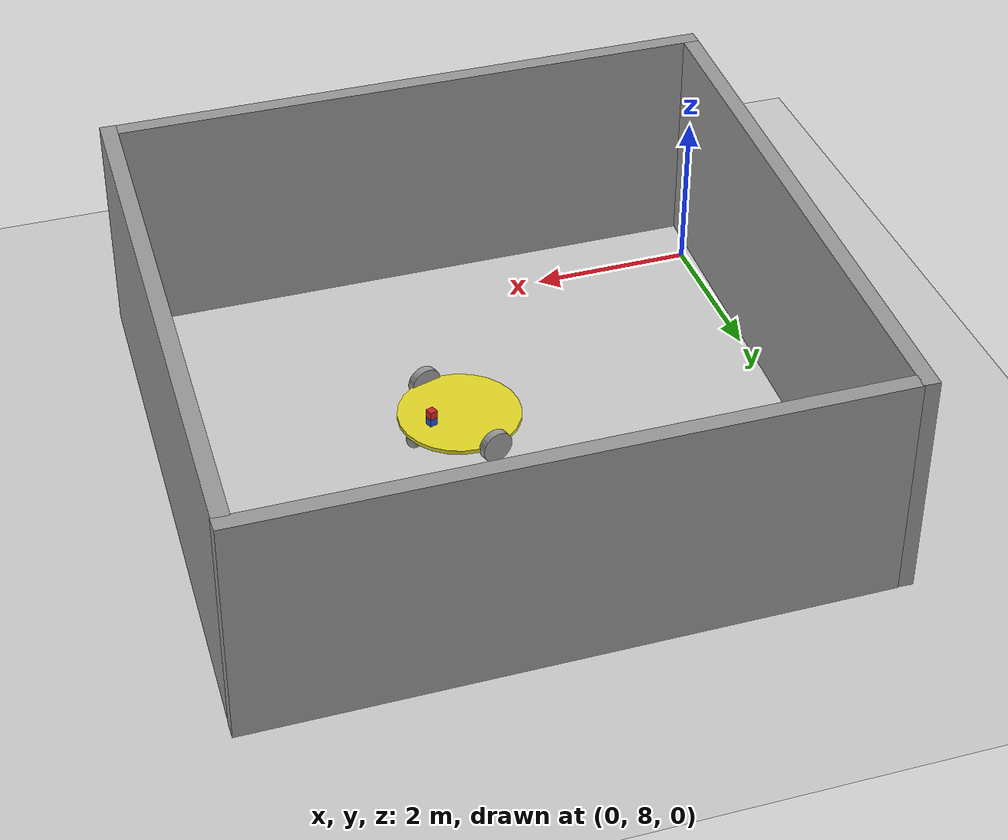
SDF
<sdf version="1.6">
 <world name="default">
  <light name="sun" type="directional">
   <pose>0 0 10 0 -0 0</pose>
   <diffuse>0.8 0.8 0.8 1</diffuse>
   <specular>0.2 0.2 0.2 1</specular>
   <attenuation>
    <range>1000</range>
    <constant>0.9</constant>
    <linear>0.01</linear>
    <quadratic>0.001</quadratic>
   </attenuation>
   <direction>-0.5 0.1 -0.9</direction>
  </light>
  <model name="ground_plane">
   <static>1</static>
   <link name="link">
    <collision name="collision">
     <geometry><plane><normal>0 0 1</normal><size>100 100</size></plane></geometry>
     <surface><friction><ode><mu>100</mu><mu2>50</mu2></ode></friction></surface>
    </collision>
    <visual name="visual">
     <cast_shadows>0</cast_shadows>
     <geometry><plane><normal>0 0 1</normal><size>100 100</size></plane></geometry>
     <material>
      <script><uri>file://media/materials/scripts/gazebo.material</uri><name>Gazebo/Grey</name></script>
     </material>
    </visual>
   </link>
  </model>
  <gravity>0 0 -9.8</gravity>
  <magnetic_field>6e-06 2.3e-05 -4.2e-05</magnetic_field>
  <atmosphere type="adiabatic"/>
  <physics name="default_physics" default="0" type="ode">
   <max_step_size>0.001</max_step_size>
   <real_time_factor>1</real_time_factor>
   <real_time_update_rate>1000</real_time_update_rate>
  </physics>
  <scene><ambient>0.4 0.4 0.4 1</ambient><background>0.7 0.7 0.7 1</background><shadows>1</shadows></scene>
  <spherical_coordinates>
   <surface_model>EARTH_WGS84</surface_model>
   <latitude_deg>0</latitude_deg>
   <longitude_deg>0</longitude_deg>
   <elevation>0</elevation>
   <heading_deg>0</heading_deg>
  </spherical_coordinates>
  <model name="grey_wall">
   <static>1</static>
   <link name="link">
    <pose>0 0 1.4 0 -0 0</pose>
    <collision name="collision"><geometry><box><size>7.5 0.2 2.8</size></box></geometry></collision>
    <visual name="visual">
     <cast_shadows>0</cast_shadows>
     <geometry><box><size>7.5 0.2 2.8</size></box></geometry>
     <material>
      <script>
       <uri>model://grey_wall/materials/scripts</uri>
       <uri>model://grey_wall/materials/textures</uri>
       <name>vrc/grey_wall</name>
      </script>
     </material>
    </visual>
   </link>
   <pose>3.39843 7.20345 0 0 -0 0</pose>
  </model>
  <model name="robot">
   <link name="base_footprint">
    <inertial>
     <pose>0 0 0.2 0 -0 0</pose>
     <mass>5</mass>
     <inertia><ixx>2.02829</ixx><ixy>0</ixy><ixz>0</ixz><iyy>2.87329</iyy><iyz>0</iyz><izz>2.90125</izz></inertia>
    </inertial>
    <collision name="base_footprint_fixed_joint_lump__base_link_collision">
     <pose>0 0 0.2 0 -0 0</pose>
     <geometry><cylinder><length>0.05</length><radius>0.75</radius></cylinder></geometry>
    </collision>
    <collision name="base_footprint_fixed_joint_lump__caster_wheel_back_collision_1">
     <pose>-0.65 0 0.1 0 -0 0</pose>
     <geometry><sphere><radius>0.1</radius></sphere></geometry>
     <surface><friction><ode><mu>0</mu><mu2>0</mu2></ode></friction></surface>
    </collision>
    <collision name="base_footprint_fixed_joint_lump__caster_wheel_front_collision_2">
     <pose>0.65 0 0.1 0 -0 0</pose>
     <geometry><sphere><radius>0.1</radius></sphere></geometry>
     <surface><friction><ode><mu>0</mu><mu2>0</mu2></ode></friction></surface>
    </collision>
    <visual name="base_footprint_visual">
     <geometry><box><size>0.001 0.001 0.001</size></box></geometry>
     <material><script><uri>__default__</uri><name>__default__</name></script></material>
    </visual>
    <visual name="base_footprint_fixed_joint_lump__base_link_visual_1">
     <pose>0 0 0.2 0 -0 0</pose>
     <geometry><cylinder><length>0.05</length><radius>0.75</radius></cylinder></geometry>
     <material>
      <script><name>Gazebo/Yellow</name><uri>file://media/materials/scripts/gazebo.material</uri></script>
     </material>
    </visual>
    <visual name="base_footprint_fixed_joint_lump__caster_wheel_back_visual_2">
     <pose>-0.65 0 0.1 0 -0 0</pose>
     <geometry><sphere><radius>0.1</radius></sphere></geometry>
     <material>
      <script><name>Gazebo/Grey</name><uri>file://media/materials/scripts/gazebo.material</uri></script>
     </material>
    </visual>
    <visual name="base_footprint_fixed_joint_lump__caster_wheel_front_visual_3">
     <pose>0.65 0 0.1 0 -0 0</pose>
     <geometry><sphere><radius>0.1</radius></sphere></geometry>
     <material>
      <script><name>Gazebo/Grey</name><uri>file://media/materials/scripts/gazebo.material</uri></script>
     </material>
    </visual>
    <visual name="base_footprint_fixed_joint_lump__camera_link_visual_4">
     <pose>0.4 0 0.375 0 -0 0</pose>
     <geometry><box><size>0.1 0.1 0.1</size></box></geometry>
     <material>
      <script><name>Gazebo/Red</name><uri>file://media/materials/scripts/gazebo.material</uri></script>
     </material>
    </visual>
    <visual name="base_footprint_fixed_joint_lump__hokuyo_link_visual_5">
     <pose>0.4 0 0.275 0 -0 0</pose>
     <geometry><box><size>0.1 0.1 0.1</size></box></geometry>
     <material>
      <script><name>Gazebo/Blue</name><uri>file://media/materials/scripts/gazebo.material</uri></script>
     </material>
    </visual>
    <sensor name="camera1" type="camera">
     <visualize>1</visualize>
     <update_rate>40</update_rate>
     <camera name="head">
      <horizontal_fov>1.39626</horizontal_fov>
      <image><width>800</width><height>800</height><format>R8G8B8</format></image>
      <clip><near>0.02</near><far>300</far></clip>
      <noise><type>gaussian</type><mean>0</mean><stddev>0.007</stddev></noise>
     </camera>
     <plugin name="camera_controller" filename="libgazebo_ros_camera.so">
      <topicName>/image</topicName>
      <frameName>camera_link</frameName>
      <robotNamespace>/</robotNamespace>
     </plugin>
     <pose>0.4 0 0.375 0 -0 0</pose>
    </sensor>
    <sensor name="head_hokuyo_sensor" type="ray">
     <visualize>1</visualize>
     <update_rate>40</update_rate>
     <ray>
      <scan>
       <horizontal>
        <samples>512</samples>
        <resolution>1</resolution>
        <min_angle>-1.5708</min_angle>
        <max_angle>1.5708</max_angle>
       </horizontal>
       <vertical><samples>1</samples><min_angle>0</min_angle><max_angle>0</max_angle></vertical>
      </scan>
      <range><min>0.1</min><max>10</max><resolution>0.001</resolution></range>
     </ray>
     <plugin name="gazebo_ros_head_hokuyo_controller" filename="libgazebo_ros_laser.so">
      <topicName>/scan</topicName>
      <frameName>hokuyo_link</frameName>
      <robotNamespace>/</robotNamespace>
     </plugin>
     <pose>0.4 0 0.275 0 -0 0</pose>
    </sensor>
   </link>
   <link name="left_wheel">
    <pose>0 -0.75 0.2 0 -0 0</pose>
    <inertial>
     <mass>1</mass>
     <inertia><ixx>1</ixx><ixy>0</ixy><ixz>0</ixz><iyy>1</iyy><iyz>0</iyz><izz>1</izz></inertia>
    </inertial>
    <collision name="left_wheel_collision">
     <pose>0 0 0 1.5708 -0 0</pose>
     <geometry><cylinder><length>0.1</length><radius>0.2</radius></cylinder></geometry>
     <surface>
      <contact><ode><kp>1e+07</kp><kd>1</kd></ode></contact>
      <friction><ode><mu>200</mu><mu2>100</mu2></ode></friction>
     </surface>
    </collision>
    <visual name="left_wheel_visual">
     <pose>0 0 0 1.5708 -0 0</pose>
     <geometry><cylinder><length>0.1</length><radius>0.2</radius></cylinder></geometry>
     <material>
      <script><name>Gazebo/Grey</name><uri>file://media/materials/scripts/gazebo.material</uri></script>
     </material>
    </visual>
   </link>
   <joint name="left_wheel_joint" type="revolute">
    <child>left_wheel</child>
    <parent>base_footprint</parent>
    <axis>
     <xyz>0 1 0</xyz>
     <limit><lower>-1e+16</lower><upper>1e+16</upper></limit>
     <dynamics><spring_reference>0</spring_reference><spring_stiffness>0</spring_stiffness></dynamics>
     <use_parent_model_frame>1</use_parent_model_frame>
    </axis>
   </joint>
   <link name="right_wheel">
    <pose>0 0.75 0.2 0 -0 0</pose>
    <inertial>
     <mass>1</mass>
     <inertia><ixx>1</ixx><ixy>0</ixy><ixz>0</ixz><iyy>1</iyy><iyz>0</iyz><izz>1</izz></inertia>
    </inertial>
    <collision name="right_wheel_collision">
     <pose>0 0 0 1.5708 -0 0</pose>
     <geometry><cylinder><length>0.1</length><radius>0.2</radius></cylinder></geometry>
     <surface>
      <contact><ode><kp>1e+07</kp><kd>1</kd></ode></contact>
      <friction><ode><mu>200</mu><mu2>100</mu2></ode></friction>
     </surface>
    </collision>
    <visual name="right_wheel_visual">
     <pose>0 0 0 1.5708 -0 0</pose>
     <geometry><cylinder><length>0.1</length><radius>0.2</radius></cylinder></geometry>
     <material>
      <script><name>Gazebo/Grey</name><uri>file://media/materials/scripts/gazebo.material</uri></script>
     </material>
    </visual>
   </link>
   <joint name="right_wheel_joint" type="revolute">
    <child>right_wheel</child>
    <parent>base_footprint</parent>
    <axis>
     <xyz>0 1 0</xyz>
     <limit><lower>-1e+16</lower><upper>1e+16</upper></limit>
     <dynamics><spring_reference>0</spring_reference><spring_stiffness>0</spring_stiffness></dynamics>
     <use_parent_model_frame>1</use_parent_model_frame>
    </axis>
   </joint>
   <plugin name="differential_drive_controller_front" filename="libgazebo_ros_diff_drive.so">
    <rosDebugLevel>Debug</rosDebugLevel>
    <publishWheelTF>0</publishWheelTF>
    <robotNamespace>/</robotNamespace>
    <publishTf>1</publishTf>
    <publishWheelJointState>0</publishWheelJointState>
    <alwaysOn>1</alwaysOn>
    <updateRate>100.0</updateRate>
    <leftJoint>left_wheel_joint</leftJoint>
    <rightJoint>right_wheel_joint</rightJoint>
    <wheelSeparation>1.5</wheelSeparation>
    <wheelDiameter>0.4</wheelDiameter>
    <broadcastTF>1</broadcastTF>
    <wheelTorque>30</wheelTorque>
    <wheelAcceleration>1.8</wheelAcceleration>
    <commandTopic>cmd_vel</commandTopic>
    <odometryFrame>odom</odometryFrame>
    <odometryTopic>odom</odometryTopic>
    <robotBaseFrame>base_footprint</robotBaseFrame>
   </plugin>
   <static>0</static>
   <plugin name="gazebo_ros_control" filename="libgazebo_ros_control.so">
    <robotNamespace>/</robotNamespace>
   </plugin>
   <pose>3.87525 10.5774 -2e-06 -2e-06 4e-06 0.30397</pose>
  </model>
  <model name="grey_wall_clone">
   <static>1</static>
   <link name="link">
    <pose>0 0 1.4 0 -0 0</pose>
    <collision name="collision"><geometry><box><size>7.5 0.2 2.8</size></box></geometry></collision>
    <visual name="visual">
     <cast_shadows>0</cast_shadows>
     <geometry><box><size>7.5 0.2 2.8</size></box></geometry>
     <material>
      <script>
       <uri>model://grey_wall/materials/scripts</uri>
       <uri>model://grey_wall/materials/textures</uri>
       <name>vrc/grey_wall</name>
      </script>
     </material>
    </visual>
   </link>
   <pose>3.86458 14.6776 0 0 -0 0</pose>
  </model>
  <model name="grey_wall_clone_clone">
   <static>1</static>
   <link name="link">
    <pose>0 0 1.4 0 -0 0</pose>
    <collision name="collision"><geometry><box><size>7.5 0.2 2.8</size></box></geometry></collision>
    <visual name="visual">
     <cast_shadows>0</cast_shadows>
     <geometry><box><size>7.5 0.2 2.8</size></box></geometry>
     <material>
      <script>
       <uri>model://grey_wall/materials/scripts</uri>
       <uri>model://grey_wall/materials/textures</uri>
       <name>vrc/grey_wall</name>
      </script>
     </material>
    </visual>
   </link>
   <pose>-0.110195 11.0264 0 0 0 -1.6082</pose>
  </model>
  <model name="grey_wall_clone_clone_clone">
   <static>1</static>
   <link name="link">
    <pose>0 0 1.4 0 -0 0</pose>
    <collision name="collision"><geometry><box><size>7.5 0.2 2.8</size></box></geometry></collision>
    <visual name="visual">
     <cast_shadows>0</cast_shadows>
     <geometry><box><size>7.5 0.2 2.8</size></box></geometry>
     <material>
      <script>
       <uri>model://grey_wall/materials/scripts</uri>
       <uri>model://grey_wall/materials/textures</uri>
       <name>vrc/grey_wall</name>
      </script>
     </material>
    </visual>
   </link>
   <pose>7.36926 10.8448 0 0 0 -1.6082</pose>
  </model>
 </world>
</sdf>
